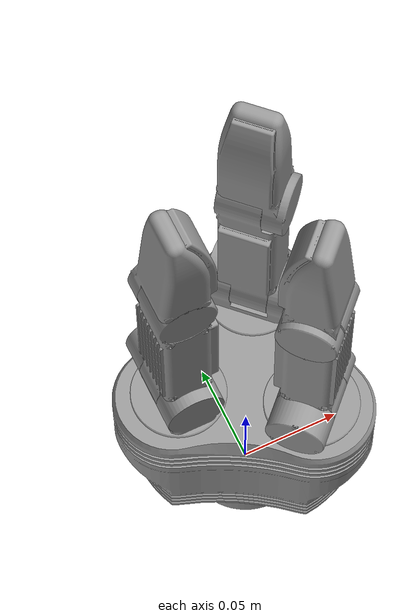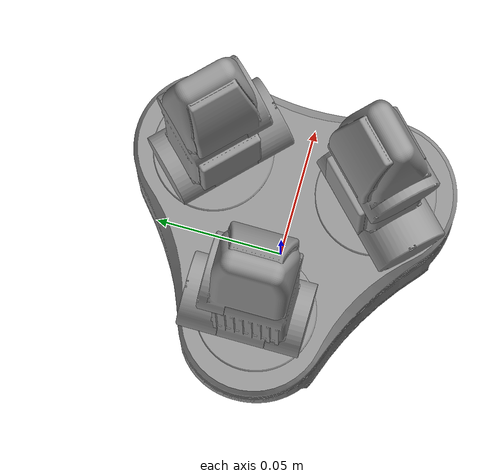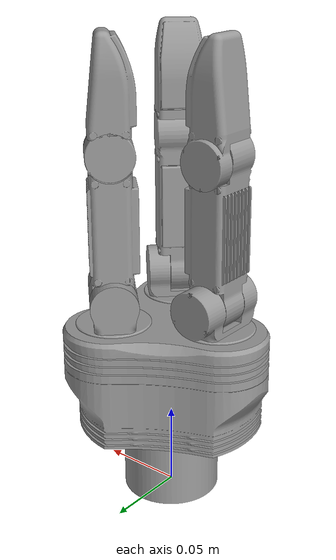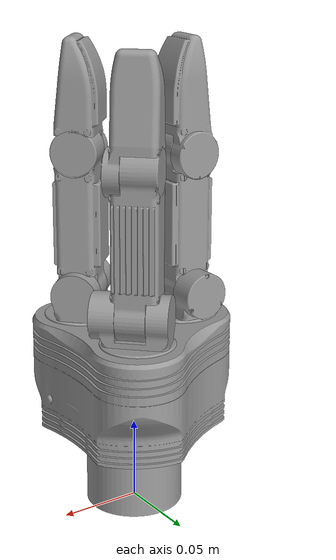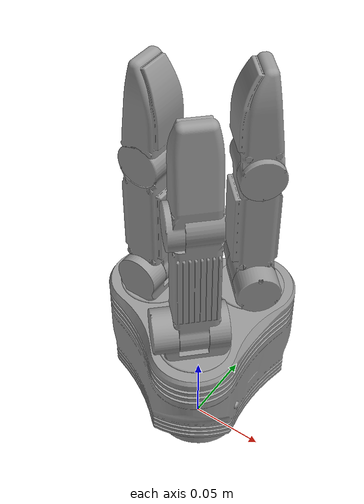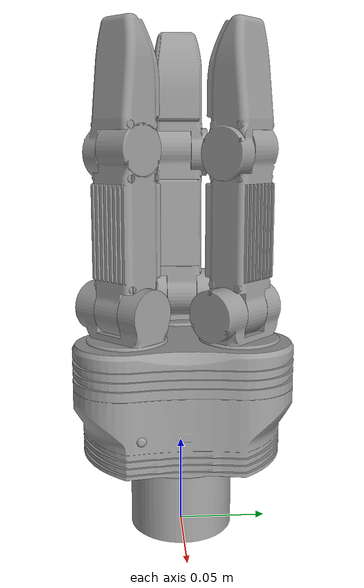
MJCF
<mujoco model="schunk_hand">
    <compiler angle="radian" meshdir="environment_parts/" />

    <asset>
        <material name="metal" specular="1" shininess="0.1" reflectance="0.5" rgba="0.6 0.6 0.6 1"/>
        <material name="black2" rgba="0.149 0.149 0.149 1"/>
        <material name="wood2" rgba="0.56 0.37 0.29 1"/>
        <material name="gray2" rgba="0.4 0.4 0.4 1"/>
        <mesh name="SDH_Gehaeuse" file="schunk_hand/assets_schunk_hand/SDH_Gehaeuse.STL" scale="0.001 0.001 0.001"/>
        <mesh name="SDH_Gelenk_Finger1" file="schunk_hand/assets_schunk_hand/SDH_Gelenk_Finger1.STL" scale="0.001 0.001 0.001"/>
        <mesh name="SDH_Kuppe_Finger1" file="schunk_hand/assets_schunk_hand/SDH_Kuppe_Finger1.STL" scale="0.001 0.001 0.001"/>
        <mesh name="SDH_Mittelteil_Finger1" file="schunk_hand/assets_schunk_hand/SDH_Mittelteil_Finger1.STL" scale="0.001 0.001 0.001"/>
        <mesh name="Adapter" file="schunk_hand/assets_schunk_hand/Adapter.STL" scale="0.001 0.001 0.001"/>
    </asset>

    <actuator>
        <position name="finger_base_1" joint="finger_base_1" ctrllimited="true" ctrlrange="-2.9670597283903604 2.9670597283903604" kp="1" />
        <position name="finger_mittel_1" joint="finger_mittel_1" ctrllimited="true" ctrlrange="-2.9670597283903604 2.9670597283903604" kp="7" />
        <position name="finger_kuppe_1" joint="finger_kuppe_1" ctrllimited="true" ctrlrange="-2.9670597283903604 2.9670597283903604" kp="7" />
    </actuator>

    <worldbody>
        <light pos="0 0 1.5" dir="0 0 -1" directional="true"/>
        <!--geom name="ground" type="plane" size="0 0 1" pos="0 0 0" quat="1 0 0 0"  contype="0" group="0" /-->
        <body name="base_mount" pos="0 0 0.0" >
            <inertial pos="0.0 0.0 0.0" quat="1 0 0 0" mass="0.25" diaginertia="0.01 0.01 0.01"/>
            <geom type="mesh" mesh="Adapter" material="metal" group="1"/>
            <body name="Adapter" pos="0 0 0.09" >
                <geom type="mesh" mesh="SDH_Gehaeuse" material="metal" group="1"/>

                <body name="finger_mount1" pos="-0.035 0 0.025" axisangle="0 0 1 3.141592653589">
                    <joint name="finger_base_1" pos="0 0 0" axis="0 0 1" limited="true" range="-2.9670597283903604 2.9670597283903604" damping="0.1" stiffness="1.0"/>
                    <geom type="mesh" mesh="SDH_Gelenk_Finger1" material="metal" group="1" euler="1.57079632679 1.57079632679 0"/>
                    <body name="finger_mittel_mount1" pos="0 0 0.018">
                        <geom type="mesh" mesh="SDH_Mittelteil_Finger1" material="metal" group="1" euler="1.57079632679 1.57079632679 0" pos="0 0 -0.018"/>
                        <joint name="finger_mittel_1" pos="0 0 0" axis="0 1 0" limited="true" range="-2.9670597283903604 2.9670597283903604" damping="0.1" stiffness="1.0"/>
                        <body name="finger_kuppe_mount1" pos="0 0 0.086">
                            <joint name="finger_kuppe_1" pos="0 0 0" axis="0 1 0" limited="true" range="-2.9670597283903604 2.9670597283903604" damping="0.1" stiffness="1.0"/>
                            <geom type="mesh" mesh="SDH_Kuppe_Finger1" material="metal" group="1" euler="1.57079632679 1.57079632679 0" pos="0 0 -0.106"/>
                        </body>
                    </body>
                </body>

                <body name="finger_mount2" pos="0.018 0.031 0.025" axisangle="0 0 1 0.785398163397">
                    <joint name="finger_base_2" pos="0 0 0" axis="0 0 1" limited="true" range="-2.9670597283903604 2.9670597283903604" damping="0.1" stiffness="1.0"/>
                    <geom type="mesh" mesh="SDH_Gelenk_Finger1" material="metal" group="1" euler="1.57079632679 1.57079632679 0"/>
                    <body name="finger_mittel_mount2" pos="0 0 0.018">
                        <geom type="mesh" mesh="SDH_Mittelteil_Finger1" material="metal" group="1" euler="1.57079632679 1.57079632679 0" pos="0 0 -0.018"/>
                        <joint name="finger_mittel_2" pos="0 0 0" axis="0 1 0" limited="true" range="-2.9670597283903604 2.9670597283903604" damping="0.1" stiffness="1.0"/>
                        <body name="finger_kuppe_mount2" pos="0 0 0.086">
                            <joint name="finger_kuppe_2" pos="0 0 0" axis="0 1 0" limited="true" range="-2.9670597283903604 2.9670597283903604" damping="0.1" stiffness="1.0"/>
                            <geom type="mesh" mesh="SDH_Kuppe_Finger1" material="metal" group="1" euler="1.57079632679 1.57079632679 0" pos="0 0 -0.106"/>
                        </body>
                    </body>
                </body>

                <body name="finger_mount3" pos="0.018 -0.031 0.025" axisangle="0 0 1 -0.785398163397">
                    <joint name="finger_base_3" pos="0 0 0" axis="0 0 1" limited="true" range="-2.9670597283903604 2.9670597283903604" damping="0.1" stiffness="1.0"/>
                    <geom type="mesh" mesh="SDH_Gelenk_Finger1" material="metal" group="1" euler="1.57079632679 1.57079632679 0"/>
                    <body name="finger_mittel_mount3" pos="0 0 0.018">
                        <geom type="mesh" mesh="SDH_Mittelteil_Finger1" material="metal" group="1" euler="1.57079632679 1.57079632679 0" pos="0 0 -0.018"/>
                        <joint name="finger_mittel_3" pos="0 0 0" axis="0 1 0" limited="true" range="-2.9670597283903604 2.9670597283903604" damping="0.1" stiffness="1.0"/>
                        <body name="finger_kuppe_mount3" pos="0 0 0.086">
                            <joint name="finger_kuppe_3" pos="0 0 0" axis="0 1 0" limited="true" range="-2.9670597283903604 2.9670597283903604" damping="0.1" stiffness="1.0"/>
                            <geom type="mesh" mesh="SDH_Kuppe_Finger1" material="metal" group="1" euler="1.57079632679 1.57079632679 0" pos="0 0 -0.106"/>
                        </body>
                    </body>
                </body>

            </body>
        </body>
    </worldbody>
</mujoco>
